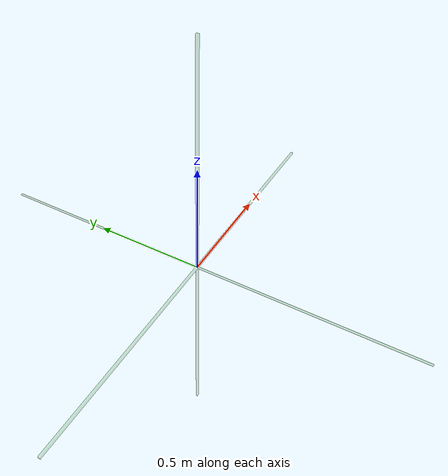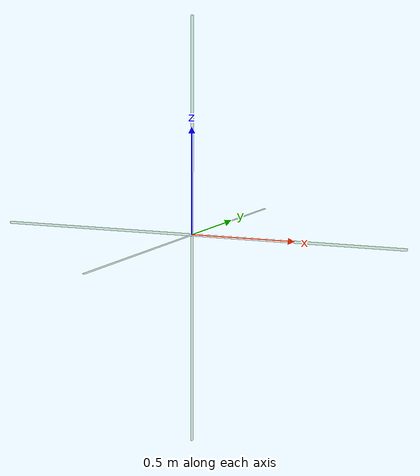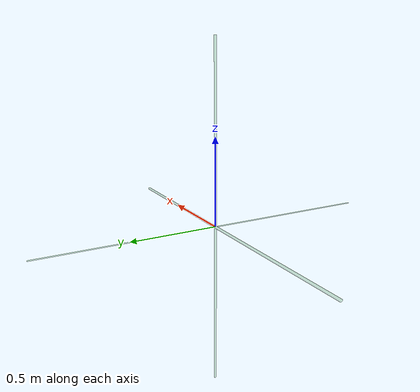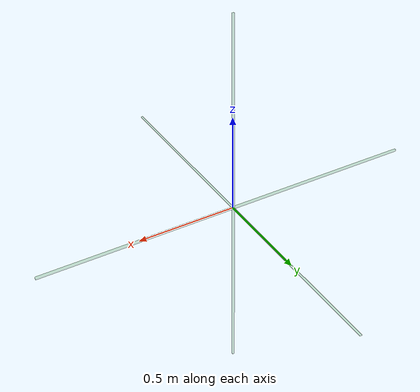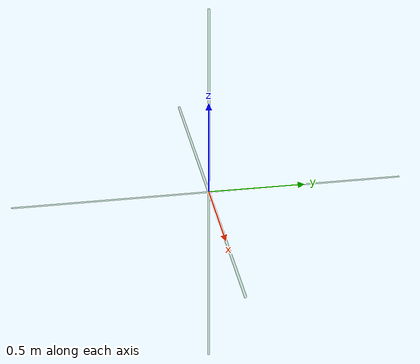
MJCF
<?xml version="1.0" encoding="utf-8"?>

    <mujoco>
        <compiler angle="radian" coordinate="local"></compiler>
        <worldbody>
            <body mocap="true" name="robot0:mocap" pos="0 0 0">
                <geom conaffinity="0" contype="0" pos="0 0 0" rgba="0 0.5 0 0.1" size="1 0.005 0.005" type="box"></geom>
                <geom conaffinity="0" contype="0" pos="0 0 0" rgba="0 0.5 0 0.1" size="0.005 1 0.001" type="box"></geom>
                <geom conaffinity="0" contype="0" pos="0 0 0" rgba="0 0.5 0 0.1" size="0.005 0.005 1" type="box"></geom>
            </body>
        </worldbody>
    </mujoco>
